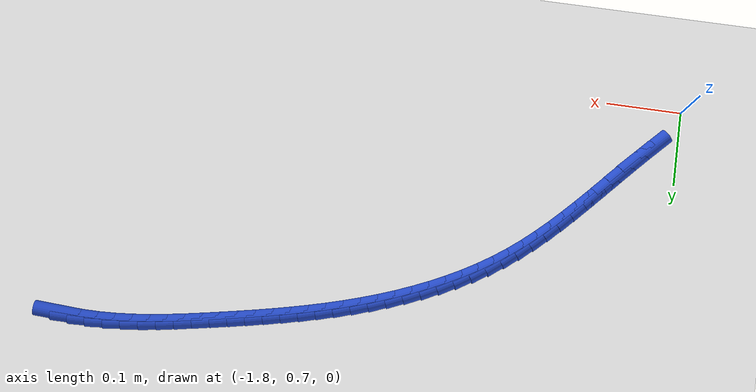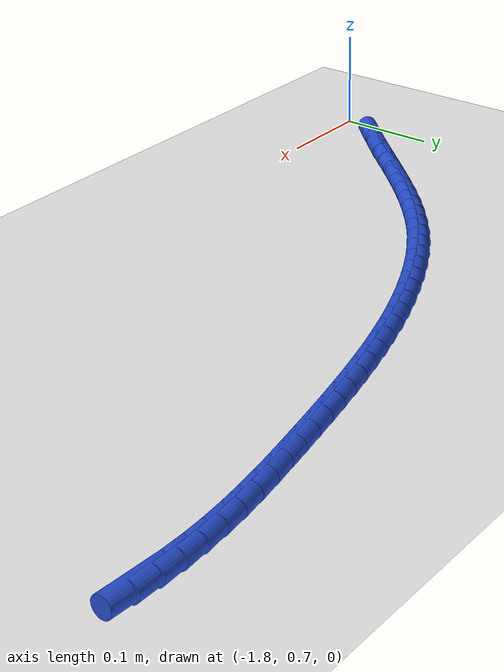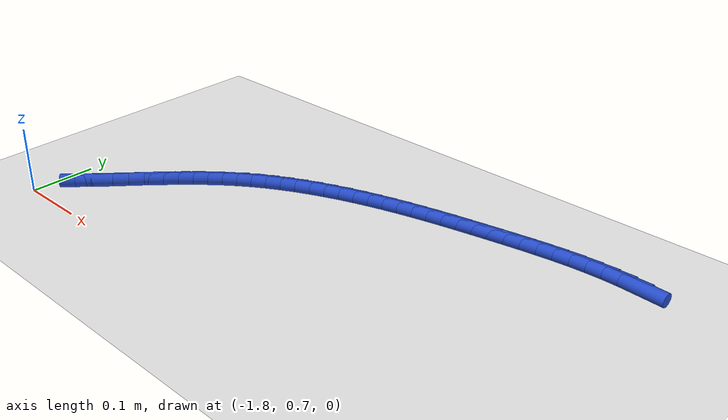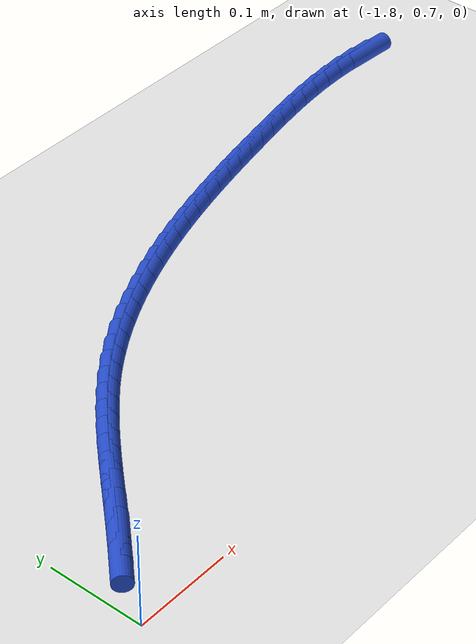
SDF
<sdf version="1.6">
 <world name="default">
  <model name="ground_plane">
   <static>1</static>
   <link name="link">
    <collision name="collision">
     <geometry><plane><normal>0 0 1</normal><size>100 100</size></plane></geometry>
     <surface><friction><ode><mu>100</mu><mu2>50</mu2></ode></friction></surface>
    </collision>
    <visual name="visual">
     <cast_shadows>0</cast_shadows>
     <geometry><plane><normal>0 0 1</normal><size>100 100</size></plane></geometry>
     <material>
      <script><uri>file://media/materials/scripts/gazebo.material</uri><name>Gazebo/WhiteGlow</name></script>
     </material>
    </visual>
   </link>
  </model>
  <model name="line">
   <link name="link_72">
    <pose>-1.022206314070724 1.0789620452904838 0.01 0 1.57 -0.056189495473699544</pose>
    <collision name="collision">
     <geometry><cylinder><radius>0.01</radius><length>0.08</length></cylinder></geometry>
    </collision>
    <visual name="visual">
     <material>
      <script><name>Gazebo/Blue</name><uri>file://media/materials/scripts/gazebo.material</uri></script>
     </material>
     <geometry><cylinder><radius>0.01</radius><length>0.08</length></cylinder></geometry>
    </visual>
   </link>
   <link name="link_73">
    <pose>-1.0449499052608473 1.0802413428462674 0.01 0 1.57 -0.0026469788316476252</pose>
    <collision name="collision">
     <geometry><cylinder><radius>0.01</radius><length>0.08</length></cylinder></geometry>
    </collision>
    <visual name="visual">
     <material>
      <script><name>Gazebo/Blue</name><uri>file://media/materials/scripts/gazebo.material</uri></script>
     </material>
     <geometry><cylinder><radius>0.01</radius><length>0.08</length></cylinder></geometry>
    </visual>
   </link>
   <link name="link_74">
    <pose>-1.0678120900818837 1.0803018587068687 0.01 0 1.57 0.04404865448683342</pose>
    <collision name="collision">
     <geometry><cylinder><radius>0.01</radius><length>0.08</length></cylinder></geometry>
    </collision>
    <visual name="visual">
     <material>
      <script><name>Gazebo/Blue</name><uri>file://media/materials/scripts/gazebo.material</uri></script>
     </material>
     <geometry><cylinder><radius>0.01</radius><length>0.08</length></cylinder></geometry>
    </visual>
   </link>
   <link name="link_75">
    <pose>-1.0907641836714166 1.079290195477296 0.01 0 1.57 0.08398107908064396</pose>
    <collision name="collision">
     <geometry><cylinder><radius>0.01</radius><length>0.08</length></cylinder></geometry>
    </collision>
    <visual name="visual">
     <material>
      <script><name>Gazebo/Blue</name><uri>file://media/materials/scripts/gazebo.material</uri></script>
     </material>
     <geometry><cylinder><radius>0.01</radius><length>0.08</length></cylinder></geometry>
    </visual>
   </link>
   <link name="link_76">
    <pose>-1.1137775011670292 1.077352955762559 0.01 0 1.57 0.11732001219181902</pose>
    <collision name="collision">
     <geometry><cylinder><radius>0.01</radius><length>0.08</length></cylinder></geometry>
    </collision>
    <visual name="visual">
     <material>
      <script><name>Gazebo/Blue</name><uri>file://media/materials/scripts/gazebo.material</uri></script>
     </material>
     <geometry><cylinder><radius>0.01</radius><length>0.08</length></cylinder></geometry>
    </visual>
   </link>
   <link name="link_77">
    <pose>-1.1368233577063058 1.0746367421676657 0.01 0 1.57 0.14426736907130147</pose>
    <collision name="collision">
     <geometry><cylinder><radius>0.01</radius><length>0.08</length></cylinder></geometry>
    </collision>
    <visual name="visual">
     <material>
      <script><name>Gazebo/Blue</name><uri>file://media/materials/scripts/gazebo.material</uri></script>
     </material>
     <geometry><cylinder><radius>0.01</radius><length>0.08</length></cylinder></geometry>
    </visual>
   </link>
   <link name="link_78">
    <pose>-1.1598730684268292 1.0712881572976252 0.01 0 1.57 0.16501655797470746</pose>
    <collision name="collision">
     <geometry><cylinder><radius>0.01</radius><length>0.08</length></cylinder></geometry>
    </collision>
    <visual name="visual">
     <material>
      <script><name>Gazebo/Blue</name><uri>file://media/materials/scripts/gazebo.material</uri></script>
     </material>
     <geometry><cylinder><radius>0.01</radius><length>0.08</length></cylinder></geometry>
    </visual>
   </link>
   <link name="link_79">
    <pose>-1.1828979484661835 1.0674538037574464 0.01 0 1.57 0.1797231965092913</pose>
    <collision name="collision">
     <geometry><cylinder><radius>0.01</radius><length>0.08</length></cylinder></geometry>
    </collision>
    <visual name="visual">
     <material>
      <script><name>Gazebo/Blue</name><uri>file://media/materials/scripts/gazebo.material</uri></script>
     </material>
     <geometry><cylinder><radius>0.01</radius><length>0.08</length></cylinder></geometry>
    </visual>
   </link>
   <link name="link_80">
    <pose>-1.205869312961952 1.0632802841521385 0.01 0 1.57 0.18851031697392676</pose>
    <collision name="collision">
     <geometry><cylinder><radius>0.01</radius><length>0.08</length></cylinder></geometry>
    </collision>
    <visual name="visual">
     <material>
      <script><name>Gazebo/Blue</name><uri>file://media/materials/scripts/gazebo.material</uri></script>
     </material>
     <geometry><cylinder><radius>0.01</radius><length>0.08</length></cylinder></geometry>
    </visual>
   </link>
   <link name="link_81">
    <pose>-1.228758554845221 1.05891357765483 0.01 0 1.57 0.1941432162042487</pose>
    <collision name="collision">
     <geometry><cylinder><radius>0.01</radius><length>0.08</length></cylinder></geometry>
    </collision>
    <visual name="visual">
     <material>
      <script><name>Gazebo/Blue</name><uri>file://media/materials/scripts/gazebo.material</uri></script>
     </material>
     <geometry><cylinder><radius>0.01</radius><length>0.08</length></cylinder></geometry>
    </visual>
   </link>
   <link name="link_82">
    <pose>-1.2515453552079618 1.0544332426770289 0.01 0 1.57 0.20175461592208171</pose>
    <collision name="collision">
     <geometry><cylinder><radius>0.01</radius><length>0.08</length></cylinder></geometry>
    </collision>
    <visual name="visual">
     <material>
      <script><name>Gazebo/Blue</name><uri>file://media/materials/scripts/gazebo.material</uri></script>
     </material>
     <geometry><cylinder><radius>0.01</radius><length>0.08</length></cylinder></geometry>
    </visual>
   </link>
   <link name="link_83">
    <pose>-1.2742249198809479 1.0497944234218928 0.01 0 1.57 0.2119221431425157</pose>
    <collision name="collision">
     <geometry><cylinder><radius>0.01</radius><length>0.08</length></cylinder></geometry>
    </collision>
    <visual name="visual">
     <material>
      <script><name>Gazebo/Blue</name><uri>file://media/materials/scripts/gazebo.material</uri></script>
     </material>
     <geometry><cylinder><radius>0.01</radius><length>0.08</length></cylinder></geometry>
    </visual>
   </link>
   <link name="link_84">
    <pose>-1.2967941610555442 1.044938589434022 0.01 0 1.57 0.22465268294512614</pose>
    <collision name="collision">
     <geometry><cylinder><radius>0.01</radius><length>0.08</length></cylinder></geometry>
    </collision>
    <visual name="visual">
     <material>
      <script><name>Gazebo/Blue</name><uri>file://media/materials/scripts/gazebo.material</uri></script>
     </material>
     <geometry><cylinder><radius>0.01</radius><length>0.08</length></cylinder></geometry>
    </visual>
   </link>
   <link name="link_85">
    <pose>-1.3192499909231157 1.0398072102580165 0.01 0 1.57 0.23994287480410498</pose>
    <collision name="collision">
     <geometry><cylinder><radius>0.01</radius><length>0.08</length></cylinder></geometry>
    </collision>
    <visual name="visual">
     <material>
      <script><name>Gazebo/Blue</name><uri>file://media/materials/scripts/gazebo.material</uri></script>
     </material>
     <geometry><cylinder><radius>0.01</radius><length>0.08</length></cylinder></geometry>
    </visual>
   </link>
   <link name="link_86">
    <pose>-1.341589321675029 1.034341755438476 0.01 0 1.57 0.2577765476401392</pose>
    <collision name="collision">
     <geometry><cylinder><radius>0.01</radius><length>0.08</length></cylinder></geometry>
    </collision>
    <visual name="visual">
     <material>
      <script><name>Gazebo/Blue</name><uri>file://media/materials/scripts/gazebo.material</uri></script>
     </material>
     <geometry><cylinder><radius>0.01</radius><length>0.08</length></cylinder></geometry>
    </visual>
   </link>
   <link name="link_87">
    <pose>-1.3638090655026491 1.0284836945200002 0.01 0 1.57 0.2781217973391646</pose>
    <collision name="collision">
     <geometry><cylinder><radius>0.01</radius><length>0.08</length></cylinder></geometry>
    </collision>
    <visual name="visual">
     <material>
      <script><name>Gazebo/Blue</name><uri>file://media/materials/scripts/gazebo.material</uri></script>
     </material>
     <geometry><cylinder><radius>0.01</radius><length>0.08</length></cylinder></geometry>
    </visual>
   </link>
   <link name="link_88">
    <pose>-1.3859061345973411 1.02217449704719 0.01 0 1.57 0.30092783740872114</pose>
    <collision name="collision">
     <geometry><cylinder><radius>0.01</radius><length>0.08</length></cylinder></geometry>
    </collision>
    <visual name="visual">
     <material>
      <script><name>Gazebo/Blue</name><uri>file://media/materials/scripts/gazebo.material</uri></script>
     </material>
     <geometry><cylinder><radius>0.01</radius><length>0.08</length></cylinder></geometry>
    </visual>
   </link>
   <link name="link_89">
    <pose>-1.407877441150471 1.0153556325646447 0.01 0 1.57 0.32612180995729956</pose>
    <collision name="collision">
     <geometry><cylinder><radius>0.01</radius><length>0.08</length></cylinder></geometry>
    </collision>
    <visual name="visual">
     <material>
      <script><name>Gazebo/Blue</name><uri>file://media/materials/scripts/gazebo.material</uri></script>
     </material>
     <geometry><cylinder><radius>0.01</radius><length>0.08</length></cylinder></geometry>
    </visual>
   </link>
   <link name="link_90">
    <pose>-1.429719897353404 1.0079685706169648 0.01 0 1.57 0.35360577450195674</pose>
    <collision name="collision">
     <geometry><cylinder><radius>0.01</radius><length>0.08</length></cylinder></geometry>
    </collision>
    <visual name="visual">
     <material>
      <script><name>Gazebo/Blue</name><uri>file://media/materials/scripts/gazebo.material</uri></script>
     </material>
     <geometry><cylinder><radius>0.01</radius><length>0.08</length></cylinder></geometry>
    </visual>
   </link>
   <link name="link_91">
    <pose>-1.4514303895983203 0.9999547909659963 0.01 0 1.57 0.3832612312111733</pose>
    <collision name="collision">
     <geometry><cylinder><radius>0.01</radius><length>0.08</length></cylinder></geometry>
    </collision>
    <visual name="visual">
     <material>
      <script><name>Gazebo/Blue</name><uri>file://media/materials/scripts/gazebo.material</uri></script>
     </material>
     <geometry><cylinder><radius>0.01</radius><length>0.08</length></cylinder></geometry>
    </visual>
   </link>
   <link name="link_92">
    <pose>-1.472981872889754 0.9912652509169162 0.01 0 1.57 0.41515794365928205</pose>
    <collision name="collision">
     <geometry><cylinder><radius>0.01</radius><length>0.08</length></cylinder></geometry>
    </collision>
    <visual name="visual">
     <material>
      <script><name>Gazebo/Blue</name><uri>file://media/materials/scripts/gazebo.material</uri></script>
     </material>
     <geometry><cylinder><radius>0.01</radius><length>0.08</length></cylinder></geometry>
    </visual>
   </link>
   <link name="link_93">
    <pose>-1.494279053815596 0.981877936183593 0.01 0 1.57 0.44958623319120117</pose>
    <collision name="collision">
     <geometry><cylinder><radius>0.01</radius><length>0.08</length></cylinder></geometry>
    </collision>
    <visual name="visual">
     <material>
      <script><name>Gazebo/Blue</name><uri>file://media/materials/scripts/gazebo.material</uri></script>
     </material>
     <geometry><cylinder><radius>0.01</radius><length>0.08</length></cylinder></geometry>
    </visual>
   </link>
   <link name="link_94">
    <pose>-1.5152145524976237 0.9717756190809894 0.01 0 1.57 0.4868753736844972</pose>
    <collision name="collision">
     <geometry><cylinder><radius>0.01</radius><length>0.08</length></cylinder></geometry>
    </collision>
    <visual name="visual">
     <material>
      <script><name>Gazebo/Blue</name><uri>file://media/materials/scripts/gazebo.material</uri></script>
     </material>
     <geometry><cylinder><radius>0.01</radius><length>0.08</length></cylinder></geometry>
    </visual>
   </link>
   <link name="link_95">
    <pose>-1.5356809890576153 0.9609410719240671 0.01 0 1.57 0.527380497972606</pose>
    <collision name="collision">
     <geometry><cylinder><radius>0.01</radius><length>0.08</length></cylinder></geometry>
    </collision>
    <visual name="visual">
     <material>
      <script><name>Gazebo/Blue</name><uri>file://media/materials/scripts/gazebo.material</uri></script>
     </material>
     <geometry><cylinder><radius>0.01</radius><length>0.08</length></cylinder></geometry>
    </visual>
   </link>
   <link name="link_96">
    <pose>-1.5555709836173488 0.949357067027789 0.01 0 1.57 0.5714798595390188</pose>
    <collision name="collision">
     <geometry><cylinder><radius>0.01</radius><length>0.08</length></cylinder></geometry>
    </collision>
    <visual name="visual">
     <material>
      <script><name>Gazebo/Blue</name><uri>file://media/materials/scripts/gazebo.material</uri></script>
     </material>
     <geometry><cylinder><radius>0.01</radius><length>0.08</length></cylinder></geometry>
    </visual>
   </link>
   <link name="link_97">
    <pose>-1.5747771562986024 0.9370063767071173 0.01 0 1.57 0.6193110020784869</pose>
    <collision name="collision">
     <geometry><cylinder><radius>0.01</radius><length>0.08</length></cylinder></geometry>
    </collision>
    <visual name="visual">
     <material>
      <script><name>Gazebo/Blue</name><uri>file://media/materials/scripts/gazebo.material</uri></script>
     </material>
     <geometry><cylinder><radius>0.01</radius><length>0.08</length></cylinder></geometry>
    </visual>
   </link>
   <link name="link_98">
    <pose>-1.5931984253349256 0.9238744184186672 0.01 0 1.57 0.6663151772824806</pose>
    <collision name="collision">
     <geometry><cylinder><radius>0.01</radius><length>0.08</length></cylinder></geometry>
    </collision>
    <visual name="visual">
     <material>
      <script><name>Gazebo/Blue</name><uri>file://media/materials/scripts/gazebo.material</uri></script>
     </material>
     <geometry><cylinder><radius>0.01</radius><length>0.08</length></cylinder></geometry>
    </visual>
   </link>
   <link name="link_99">
    <pose>-1.6108499954914757 0.9099954487568195 0.01 0 1.57 0.7078738209341552</pose>
    <collision name="collision">
     <geometry><cylinder><radius>0.01</radius><length>0.08</length></cylinder></geometry>
    </collision>
    <visual name="visual">
     <material>
      <script><name>Gazebo/Blue</name><uri>file://media/materials/scripts/gazebo.material</uri></script>
     </material>
     <geometry><cylinder><radius>0.01</radius><length>0.08</length></cylinder></geometry>
    </visual>
   </link>
   <link name="link_100">
    <pose>-1.6278494030983213 0.8954467025123731 0.01 0 1.57 0.7433939958493837</pose>
    <collision name="collision">
     <geometry><cylinder><radius>0.01</radius><length>0.08</length></cylinder></geometry>
    </collision>
    <visual name="visual">
     <material>
      <script><name>Gazebo/Blue</name><uri>file://media/materials/scripts/gazebo.material</uri></script>
     </material>
     <geometry><cylinder><radius>0.01</radius><length>0.08</length></cylinder></geometry>
    </visual>
   </link>
   <link name="link_101">
    <pose>-1.6443176772975547 0.8803068814209697 0.01 0 1.57 0.7725962431589013</pose>
    <collision name="collision">
     <geometry><cylinder><radius>0.01</radius><length>0.08</length></cylinder></geometry>
    </collision>
    <visual name="visual">
     <material>
      <script><name>Gazebo/Blue</name><uri>file://media/materials/scripts/gazebo.material</uri></script>
     </material>
     <geometry><cylinder><radius>0.01</radius><length>0.08</length></cylinder></geometry>
    </visual>
   </link>
   <link name="link_102">
    <pose>-1.6603758472312684 0.864654687218249 0.01 0 1.57 0.7953419939166329</pose>
    <collision name="collision">
     <geometry><cylinder><radius>0.01</radius><length>0.08</length></cylinder></geometry>
    </collision>
    <visual name="visual">
     <material>
      <script><name>Gazebo/Blue</name><uri>file://media/materials/scripts/gazebo.material</uri></script>
     </material>
     <geometry><cylinder><radius>0.01</radius><length>0.08</length></cylinder></geometry>
    </visual>
   </link>
   <link name="link_103">
    <pose>-1.6761449420415562 0.8485688216398523 0.01 0 1.57 0.8116011850671496</pose>
    <collision name="collision">
     <geometry><cylinder><radius>0.01</radius><length>0.08</length></cylinder></geometry>
    </collision>
    <visual name="visual">
     <material>
      <script><name>Gazebo/Blue</name><uri>file://media/materials/scripts/gazebo.material</uri></script>
     </material>
     <geometry><cylinder><radius>0.01</radius><length>0.08</length></cylinder></geometry>
    </visual>
   </link>
   <link name="link_104">
    <pose>-1.6917459908705101 0.8321279864214202 0.01 0 1.57 0.8214231727578891</pose>
    <collision name="collision">
     <geometry><cylinder><radius>0.01</radius><length>0.08</length></cylinder></geometry>
    </collision>
    <visual name="visual">
     <material>
      <script><name>Gazebo/Blue</name><uri>file://media/materials/scripts/gazebo.material</uri></script>
     </material>
     <geometry><cylinder><radius>0.01</radius><length>0.08</length></cylinder></geometry>
    </visual>
   </link>
   <link name="link_105">
    <pose>-1.7073000228602222 0.8154108832985933 0.01 0 1.57 0.8249140825073089</pose>
    <collision name="collision">
     <geometry><cylinder><radius>0.01</radius><length>0.08</length></cylinder></geometry>
    </collision>
    <visual name="visual">
     <material>
      <script><name>Gazebo/Blue</name><uri>file://media/materials/scripts/gazebo.material</uri></script>
     </material>
     <geometry><cylinder><radius>0.01</radius><length>0.08</length></cylinder></geometry>
    </visual>
   </link>
   <link name="link_106">
    <pose>-1.7229280671527865 0.7984962140070128 0.01 0 1.57 0.8222218184924835</pose>
    <collision name="collision">
     <geometry><cylinder><radius>0.01</radius><length>0.08</length></cylinder></geometry>
    </collision>
    <visual name="visual">
     <material>
      <script><name>Gazebo/Blue</name><uri>file://media/materials/scripts/gazebo.material</uri></script>
     </material>
     <geometry><cylinder><radius>0.01</radius><length>0.08</length></cylinder></geometry>
    </visual>
   </link>
   <link name="link_107">
    <pose>-1.7387511528902946 0.7814626802823189 0.01 0 1.57 0.813528646006731</pose>
    <collision name="collision">
     <geometry><cylinder><radius>0.01</radius><length>0.08</length></cylinder></geometry>
    </collision>
    <visual name="visual">
     <material>
      <script><name>Gazebo/Blue</name><uri>file://media/materials/scripts/gazebo.material</uri></script>
     </material>
     <geometry><cylinder><radius>0.01</radius><length>0.08</length></cylinder></geometry>
    </visual>
   </link>
   <link name="link_108">
    <pose>-1.7548903092148398 0.7643889838601533 0.01 0 1.57 0.7990504550523471</pose>
    <collision name="collision">
     <geometry><cylinder><radius>0.01</radius><length>0.08</length></cylinder></geometry>
    </collision>
    <visual name="visual">
     <material>
      <script><name>Gazebo/Blue</name><uri>file://media/materials/scripts/gazebo.material</uri></script>
     </material>
     <geometry><cylinder><radius>0.01</radius><length>0.08</length></cylinder></geometry>
    </visual>
   </link>
  </model>
 </world>
</sdf>
